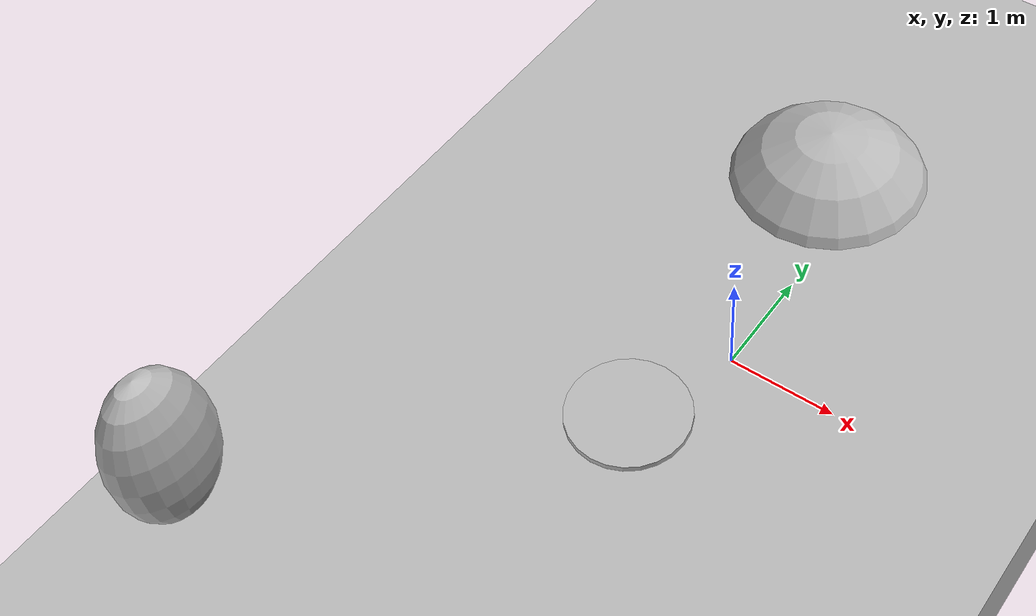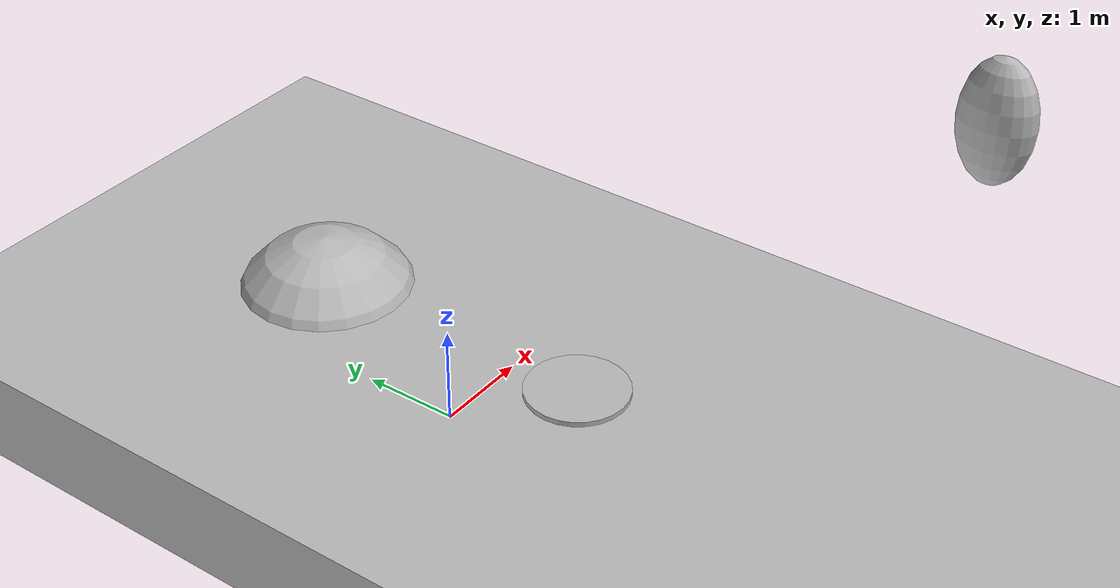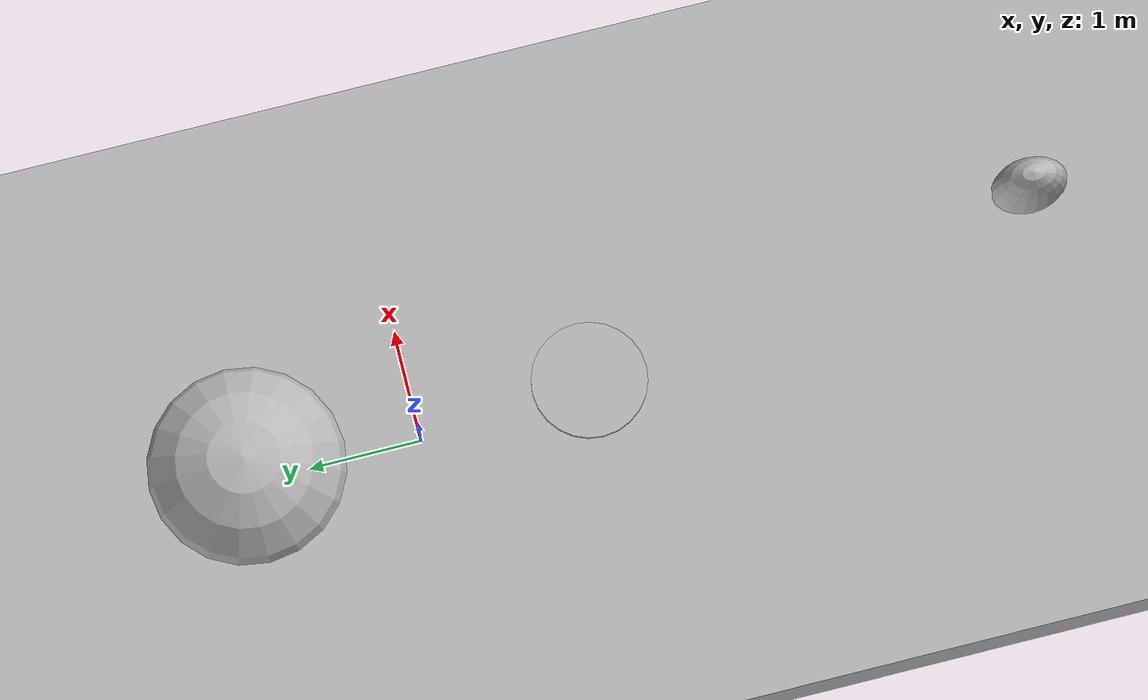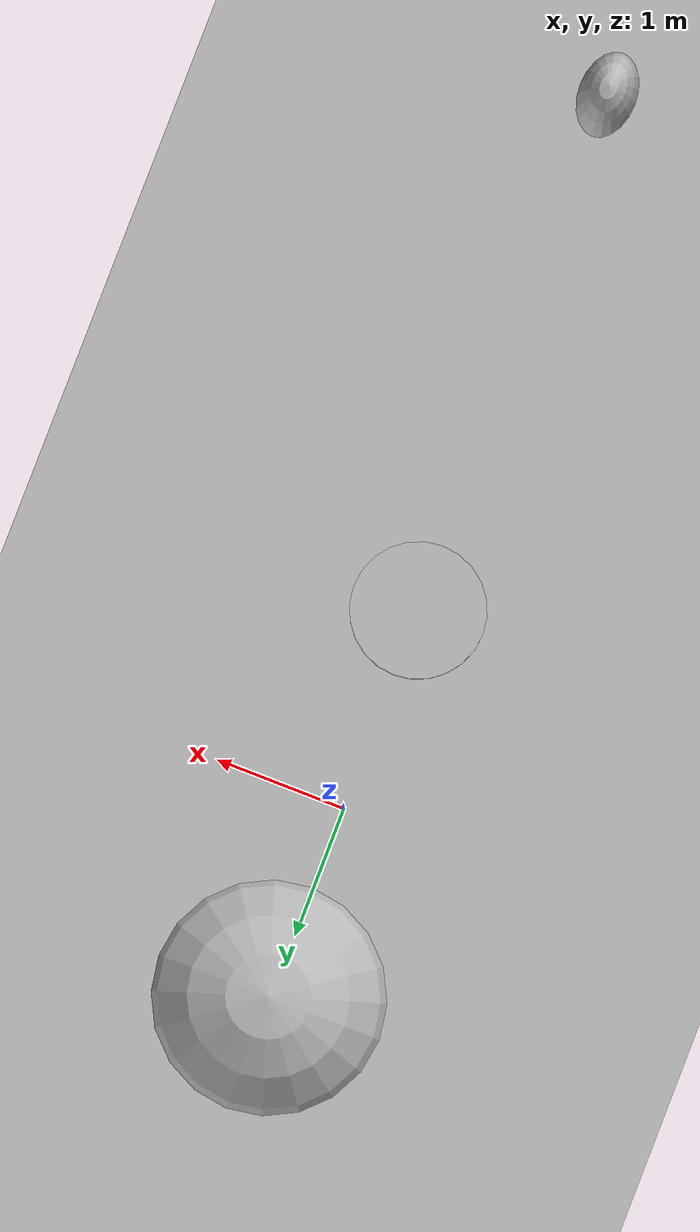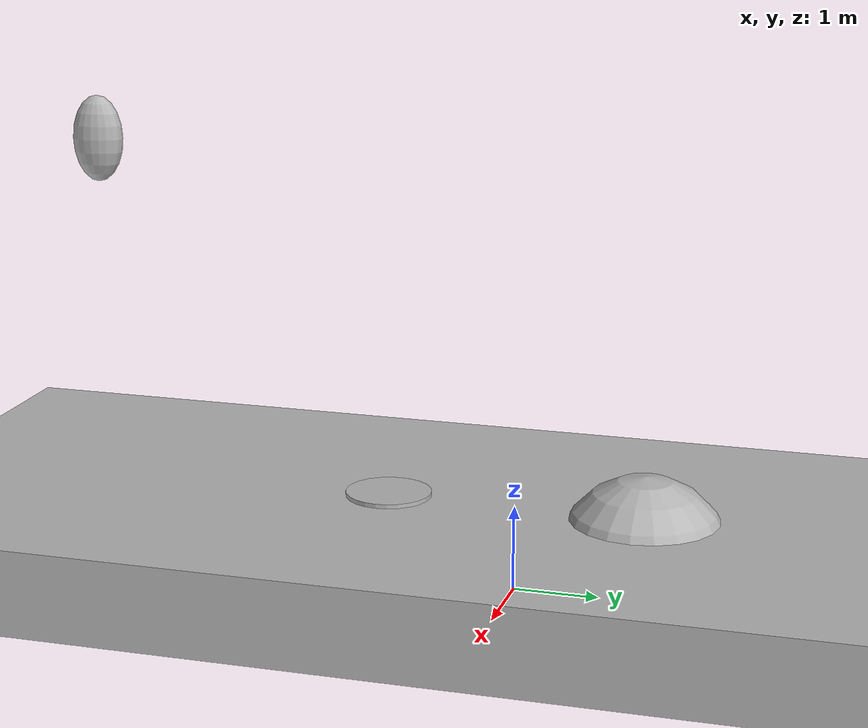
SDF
<?xml version="1.0" ?>
<sdf version="1.6">
  <world name="default">
    <model name="sphere">
      <pose>0 1.5 0.5 0 0 0</pose>
      <link name="sphere_link">
        <inertial>
          <inertia>
            <ixx>3</ixx>
            <ixy>0</ixy>
            <ixz>0</ixz>
            <iyy>3</iyy>
            <iyz>0</iyz>
            <izz>3</izz>
          </inertia>
          <mass>1.0</mass>
        </inertial>
        <collision name="sphere_collision">
          <geometry>
            <sphere>
              <radius>1</radius>
            </sphere>
          </geometry>
        </collision>
        <visual name="sphere_visual">
          <geometry>
            <sphere>
              <radius>1</radius>
            </sphere>
          </geometry>
        </visual>
      </link>
    </model>

    <model name="box">
      <static>true</static>
      <pose>0 0 0.5 0 0 0</pose>
      <link name="box_link">
        <inertial>
          <inertia>
            <ixx>1</ixx>
            <ixy>0</ixy>
            <ixz>0</ixz>
            <iyy>1</iyy>
            <iyz>0</iyz>
            <izz>1</izz>
          </inertia>
          <mass>1.0</mass>
        </inertial>
        <collision name="box_collision">
          <geometry>
            <box>
              <size>100 100 1</size>
            </box>
          </geometry>
        </collision>
        <visual name="box_visual">
          <geometry>
            <box>
              <size>100 100 1</size>
            </box>
          </geometry>
        </visual>
      </link>
    </model>

    <model name="cylinder">
      <pose>0 -1.5 0.5 0 0 0</pose>
      <link name="cylinder_link">
        <inertial>
          <inertia>
            <ixx>2</ixx>
            <ixy>0</ixy>
            <ixz>0</ixz>
            <iyy>2</iyy>
            <iyz>0</iyz>
            <izz>2</izz>
          </inertia>
          <mass>2.0</mass>
        </inertial>
        <collision name="cylinder_collision">
          <geometry>
            <cylinder>
              <radius>0.5</radius>
              <length>1.1</length>
            </cylinder>
          </geometry>
        </collision>
        <visual name="cylinder_visual">
          <geometry>
            <cylinder>
              <radius>0.5</radius>
              <length>1.1</length>
            </cylinder>
          </geometry>
        </visual>
      </link>
    </model>

    <model name="ellipsoid">
      <pose>0 -5 5 0 0 0</pose>
      <link name="ellipsoid_link">
        <inertial>
          <inertia>
            <ixx>0.068</ixx>
            <ixy>0</ixy>
            <ixz>0</ixz>
            <iyy>0.058</iyy>
            <iyz>0</iyz>
            <izz>0.026</izz>
          </inertia>
          <mass>1.0</mass>
        </inertial>
        <collision name="ellipsoid_collision">
          <geometry>
            <ellipsoid>
              <radii>0.2 0.3 0.5</radii>
            </ellipsoid>
          </geometry>
        </collision>
        <visual name="ellipsoid_visual">
          <geometry>
            <ellipsoid>
              <radii>0.2 0.3 0.5</radii>
            </ellipsoid>
          </geometry>
        </visual>
      </link>
    </model>
  </world>
</sdf>
